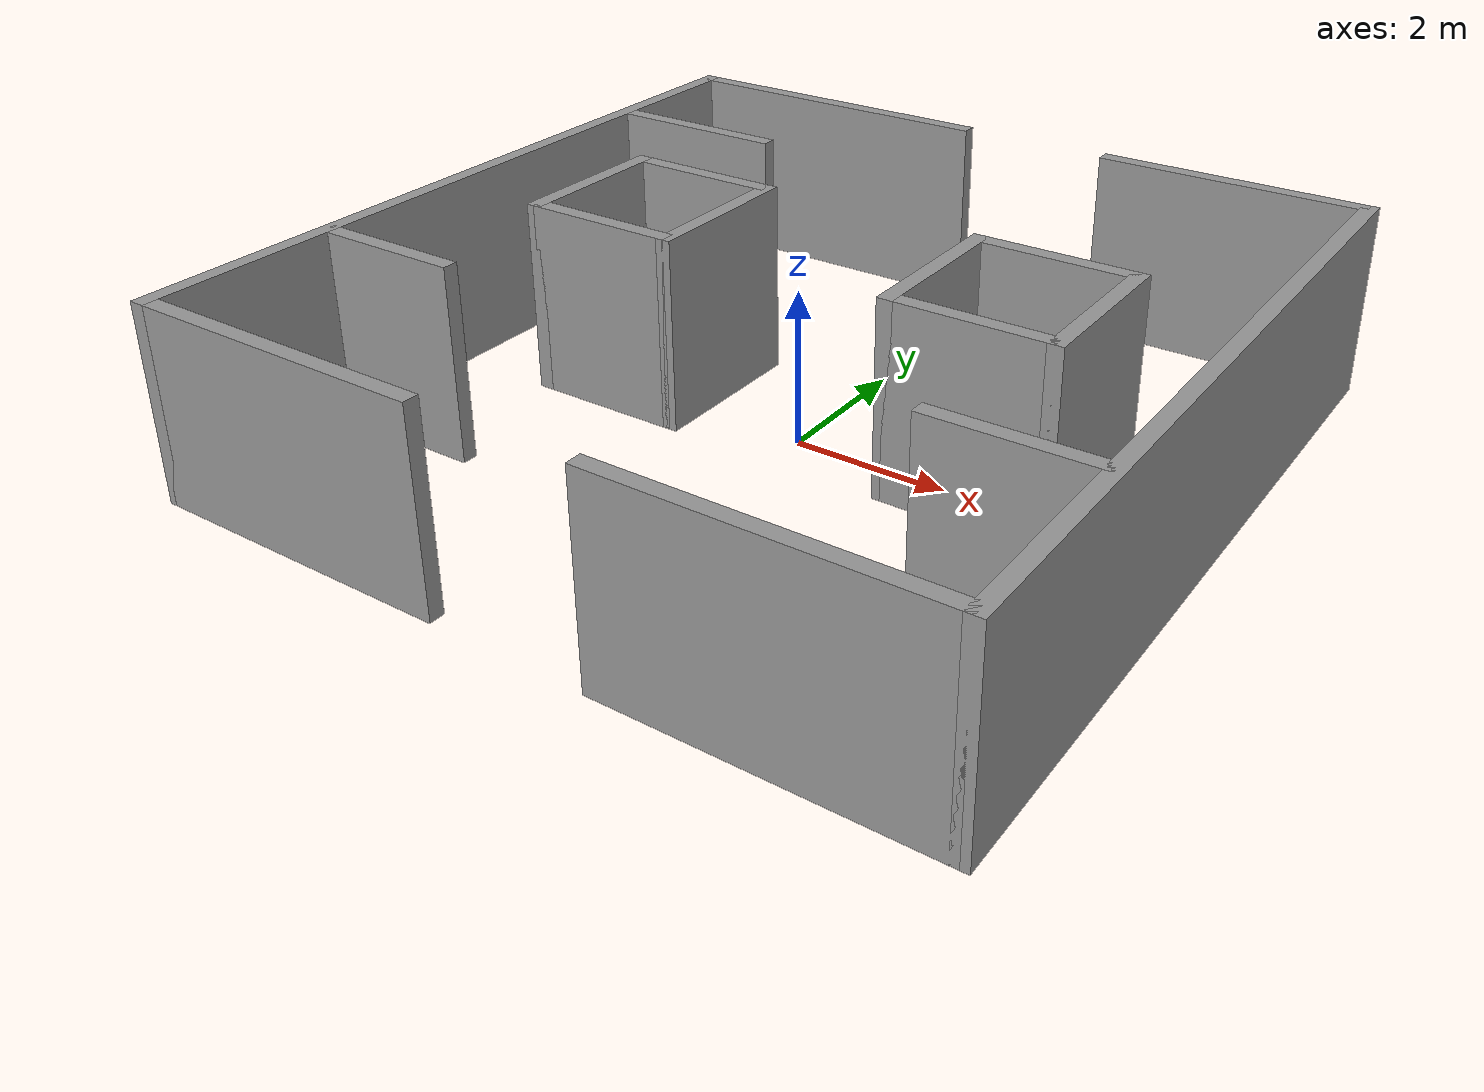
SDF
<?xml version='1.0'?>
<sdf version='1.7'>
  <model name='maze_3'>
    <pose>0 0 0 0 0 0</pose>

    <!-- ====== PARED OESTE (x=-5, vertical) ====== -->
    <link name='Wall_W'>
      <collision name='col'><geometry><box><size>10.2 0.2 2.5</size></box></geometry><pose>0 0 1.25 0 0 0</pose></collision>
      <visual name='vis'><pose>0 0 1.25 0 0 0</pose><geometry><box><size>10.2 0.2 2.5</size></box></geometry>
        <material><script><uri>file://media/materials/scripts/gazebo.material</uri><name>Gazebo/Grey</name></script></material></visual>
      <pose>-5 0 0 0 0 1.5708</pose>
    </link>

    <!-- ====== PARED ESTE (x=5, vertical) ====== -->
    <link name='Wall_E'>
      <collision name='col'><geometry><box><size>10.2 0.2 2.5</size></box></geometry><pose>0 0 1.25 0 0 0</pose></collision>
      <visual name='vis'><pose>0 0 1.25 0 0 0</pose><geometry><box><size>10.2 0.2 2.5</size></box></geometry>
        <material><script><uri>file://media/materials/scripts/gazebo.material</uri><name>Gazebo/Grey</name></script></material></visual>
      <pose>5 0 0 0 0 1.5708</pose>
    </link>

    <!-- ====== PARED SUR izquierda (y=-5, x de -5 a -1) ====== -->
    <link name='Wall_SL'>
      <collision name='col'><geometry><box><size>4.0 0.2 2.5</size></box></geometry><pose>0 0 1.25 0 0 0</pose></collision>
      <visual name='vis'><pose>0 0 1.25 0 0 0</pose><geometry><box><size>4.0 0.2 2.5</size></box></geometry>
        <material><script><uri>file://media/materials/scripts/gazebo.material</uri><name>Gazebo/Grey</name></script></material></visual>
      <pose>-3 -5 0 0 0 0</pose>
    </link>

    <!-- ====== PARED SUR derecha (y=-5, x de 1 a 5) ====== -->
    <link name='Wall_SR'>
      <collision name='col'><geometry><box><size>4.0 0.2 2.5</size></box></geometry><pose>0 0 1.25 0 0 0</pose></collision>
      <visual name='vis'><pose>0 0 1.25 0 0 0</pose><geometry><box><size>4.0 0.2 2.5</size></box></geometry>
        <material><script><uri>file://media/materials/scripts/gazebo.material</uri><name>Gazebo/Grey</name></script></material></visual>
      <pose>3 -5 0 0 0 0</pose>
    </link>

    <!-- ====== PARED NORTE izquierda (y=5, x de -5 a -0.5) === -->
    <link name='Wall_NL'>
      <collision name='col'><geometry><box><size>4.5 0.2 2.5</size></box></geometry><pose>0 0 1.25 0 0 0</pose></collision>
      <visual name='vis'><pose>0 0 1.25 0 0 0</pose><geometry><box><size>4.5 0.2 2.5</size></box></geometry>
        <material><script><uri>file://media/materials/scripts/gazebo.material</uri><name>Gazebo/Grey</name></script></material></visual>
      <pose>-2.75 5 0 0 0 0</pose>
    </link>

    <!-- ====== PARED NORTE derecha (y=5, x de 1.5 a 5) ======= -->
    <link name='Wall_NR'>
      <collision name='col'><geometry><box><size>3.5 0.2 2.5</size></box></geometry><pose>0 0 1.25 0 0 0</pose></collision>
      <visual name='vis'><pose>0 0 1.25 0 0 0</pose><geometry><box><size>3.5 0.2 2.5</size></box></geometry>
        <material><script><uri>file://media/materials/scripts/gazebo.material</uri><name>Gazebo/Grey</name></script></material></visual>
      <pose>3.25 5 0 0 0 0</pose>
    </link>

    <!-- ====== ISLA A (izquierda, cerrada, ~2x2 centrada en -2.5, 0.5) ====== -->
    <!-- Isla A - pared norte -->
    <link name='Wall_IA_N'>
      <collision name='col'><geometry><box><size>2.0 0.2 2.5</size></box></geometry><pose>0 0 1.25 0 0 0</pose></collision>
      <visual name='vis'><pose>0 0 1.25 0 0 0</pose><geometry><box><size>2.0 0.2 2.5</size></box></geometry>
        <material><script><uri>file://media/materials/scripts/gazebo.material</uri><name>Gazebo/Grey</name></script></material></visual>
      <pose>-2.5 1.5 0 0 0 0</pose>
    </link>
    <!-- Isla A - pared sur -->
    <link name='Wall_IA_S'>
      <collision name='col'><geometry><box><size>2.0 0.2 2.5</size></box></geometry><pose>0 0 1.25 0 0 0</pose></collision>
      <visual name='vis'><pose>0 0 1.25 0 0 0</pose><geometry><box><size>2.0 0.2 2.5</size></box></geometry>
        <material><script><uri>file://media/materials/scripts/gazebo.material</uri><name>Gazebo/Grey</name></script></material></visual>
      <pose>-2.5 -0.5 0 0 0 0</pose>
    </link>
    <!-- Isla A - pared oeste -->
    <link name='Wall_IA_W'>
      <collision name='col'><geometry><box><size>2.2 0.2 2.5</size></box></geometry><pose>0 0 1.25 0 0 0</pose></collision>
      <visual name='vis'><pose>0 0 1.25 0 0 0</pose><geometry><box><size>2.2 0.2 2.5</size></box></geometry>
        <material><script><uri>file://media/materials/scripts/gazebo.material</uri><name>Gazebo/Grey</name></script></material></visual>
      <pose>-3.5 0.5 0 0 0 1.5708</pose>
    </link>
    <!-- Isla A - pared este -->
    <link name='Wall_IA_E'>
      <collision name='col'><geometry><box><size>2.2 0.2 2.5</size></box></geometry><pose>0 0 1.25 0 0 0</pose></collision>
      <visual name='vis'><pose>0 0 1.25 0 0 0</pose><geometry><box><size>2.2 0.2 2.5</size></box></geometry>
        <material><script><uri>file://media/materials/scripts/gazebo.material</uri><name>Gazebo/Grey</name></script></material></visual>
      <pose>-1.5 0.5 0 0 0 1.5708</pose>
    </link>

    <!-- ====== ISLA B (derecha, cerrada, ~2x2 centrada en 2.5, 0.5) ====== -->
    <!-- Isla B - pared norte -->
    <link name='Wall_IB_N'>
      <collision name='col'><geometry><box><size>2.0 0.2 2.5</size></box></geometry><pose>0 0 1.25 0 0 0</pose></collision>
      <visual name='vis'><pose>0 0 1.25 0 0 0</pose><geometry><box><size>2.0 0.2 2.5</size></box></geometry>
        <material><script><uri>file://media/materials/scripts/gazebo.material</uri><name>Gazebo/Grey</name></script></material></visual>
      <pose>2.5 1.5 0 0 0 0</pose>
    </link>
    <!-- Isla B - pared sur -->
    <link name='Wall_IB_S'>
      <collision name='col'><geometry><box><size>2.0 0.2 2.5</size></box></geometry><pose>0 0 1.25 0 0 0</pose></collision>
      <visual name='vis'><pose>0 0 1.25 0 0 0</pose><geometry><box><size>2.0 0.2 2.5</size></box></geometry>
        <material><script><uri>file://media/materials/scripts/gazebo.material</uri><name>Gazebo/Grey</name></script></material></visual>
      <pose>2.5 -0.5 0 0 0 0</pose>
    </link>
    <!-- Isla B - pared oeste -->
    <link name='Wall_IB_W'>
      <collision name='col'><geometry><box><size>2.2 0.2 2.5</size></box></geometry><pose>0 0 1.25 0 0 0</pose></collision>
      <visual name='vis'><pose>0 0 1.25 0 0 0</pose><geometry><box><size>2.2 0.2 2.5</size></box></geometry>
        <material><script><uri>file://media/materials/scripts/gazebo.material</uri><name>Gazebo/Grey</name></script></material></visual>
      <pose>1.5 0.5 0 0 0 1.5708</pose>
    </link>
    <!-- Isla B - pared este -->
    <link name='Wall_IB_E'>
      <collision name='col'><geometry><box><size>2.2 0.2 2.5</size></box></geometry><pose>0 0 1.25 0 0 0</pose></collision>
      <visual name='vis'><pose>0 0 1.25 0 0 0</pose><geometry><box><size>2.2 0.2 2.5</size></box></geometry>
        <material><script><uri>file://media/materials/scripts/gazebo.material</uri><name>Gazebo/Grey</name></script></material></visual>
      <pose>3.5 0.5 0 0 0 1.5708</pose>
    </link>

    <!-- ====== PARED INTERIOR horizontal (y=-2, divide zona sur) ====== -->
    <!-- Lado oeste: x de -5 a -3 -->
    <link name='Wall_MID_WL'>
      <collision name='col'><geometry><box><size>2.0 0.2 2.5</size></box></geometry><pose>0 0 1.25 0 0 0</pose></collision>
      <visual name='vis'><pose>0 0 1.25 0 0 0</pose><geometry><box><size>2.0 0.2 2.5</size></box></geometry>
        <material><script><uri>file://media/materials/scripts/gazebo.material</uri><name>Gazebo/Grey</name></script></material></visual>
      <pose>-4 -2.5 0 0 0 0</pose>
    </link>
    <!-- Lado este: x de 3 a 5 -->
    <link name='Wall_MID_ER'>
      <collision name='col'><geometry><box><size>2.0 0.2 2.5</size></box></geometry><pose>0 0 1.25 0 0 0</pose></collision>
      <visual name='vis'><pose>0 0 1.25 0 0 0</pose><geometry><box><size>2.0 0.2 2.5</size></box></geometry>
        <material><script><uri>file://media/materials/scripts/gazebo.material</uri><name>Gazebo/Grey</name></script></material></visual>
      <pose>4 -2.5 0 0 0 0</pose>
    </link>

    <!-- ====== PARED SUPERIOR interna (y=3, guía hacia salida) ====== -->
    <link name='Wall_TOP_L'>
      <collision name='col'><geometry><box><size>2.5 0.2 2.5</size></box></geometry><pose>0 0 1.25 0 0 0</pose></collision>
      <visual name='vis'><pose>0 0 1.25 0 0 0</pose><geometry><box><size>2.5 0.2 2.5</size></box></geometry>
        <material><script><uri>file://media/materials/scripts/gazebo.material</uri><name>Gazebo/Grey</name></script></material></visual>
      <pose>-3.75 3 0 0 0 0</pose>
    </link>

    <static>1</static>
  </model>
</sdf>
